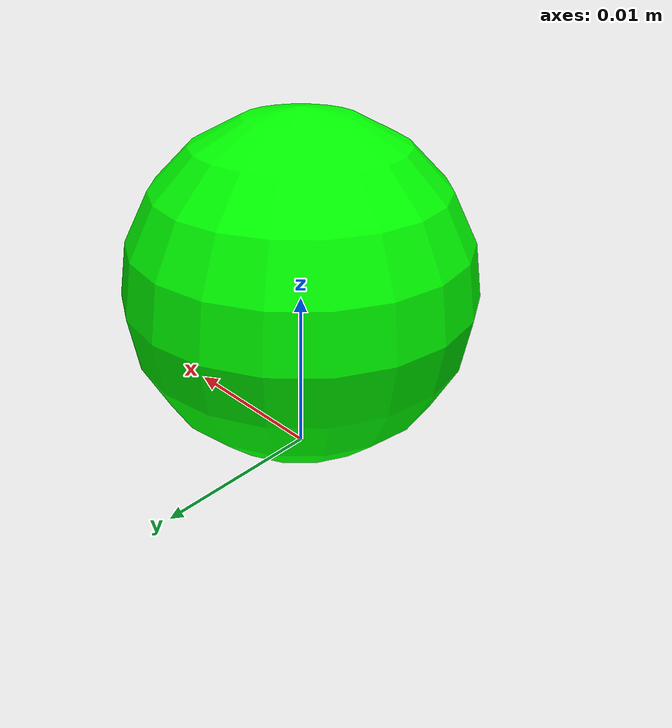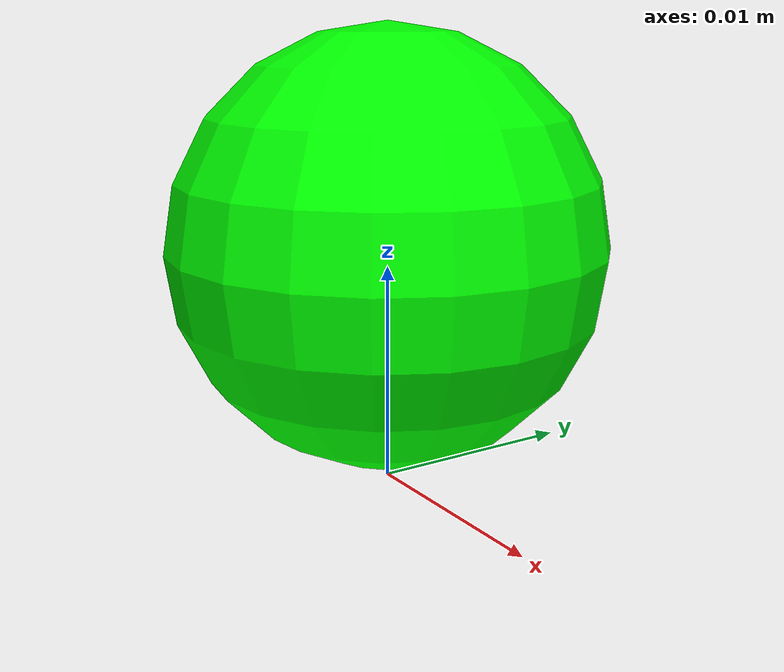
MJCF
<mujoco model="point mass">
  <option timestep="0.01" iterations="1" ls_iterations="4" />

  <default>
    <velocity ctrllimited="true" ctrlrange="-1.0 1.0" kv="0.1"/>
    <geom friction="1.0" solimp="0.0 0.95 0.005" solref="0.02 1"/>
  </default>

  <worldbody>
    <body name="point_mass" pos="0 0 .011">
      <joint name="root_x" type="slide" pos="0 0 0" axis="1 0 0" />
      <joint name="root_y" type="slide" pos="0 0 0" axis="0 1 0" />
      <geom name="point_mass" type="sphere" size=".01" rgba="0 1 0 1" />
    </body>
  </worldbody>

  <actuator>
    <velocity name="x_motor" joint="root_x" />
    <velocity name="y_motor" joint="root_y" />
  </actuator>

</mujoco>
